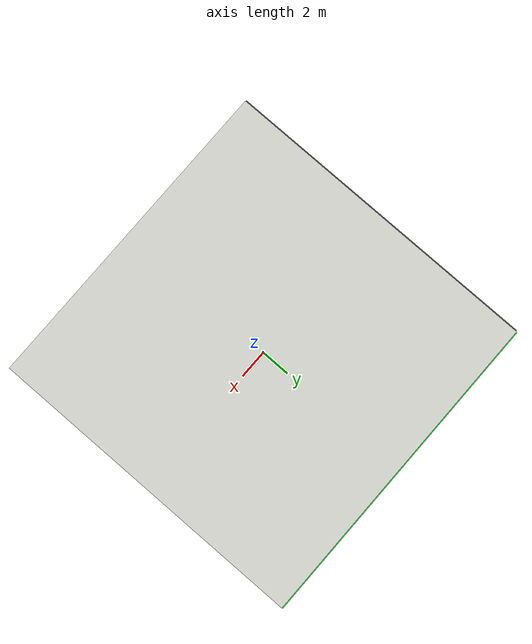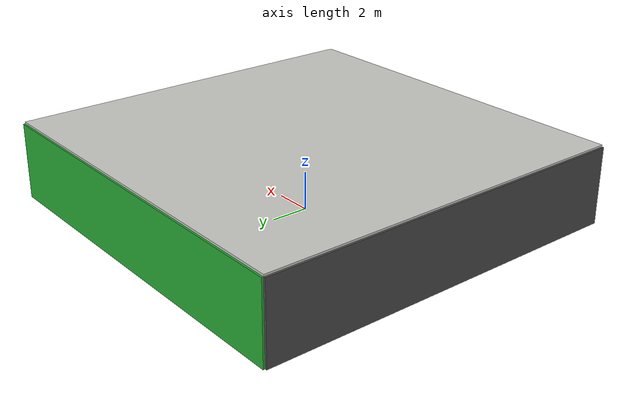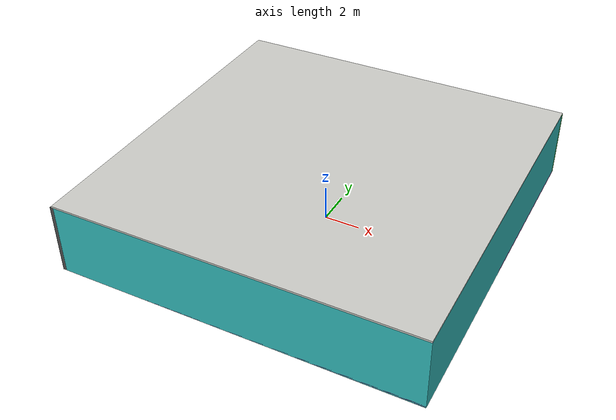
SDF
<sdf version="1.4">
 <world name="default">
  <physics type="ode">
   <max_step_size>0.001</max_step_size>
   <real_time_factor>1</real_time_factor>
   <real_time_update_rate>1000</real_time_update_rate>
   <gravity>0 0 -9.8</gravity>
  </physics>
  <scene><ambient>0.4 0.4 0.4 1</ambient><background>0.7 0.7 0.7 1</background><shadows>1</shadows></scene>
  <model name="Surrounding">
   <static>1</static>
   <link name="Ceiling">
    <collision name="Ceiling_Collision"><geometry><box><size>20 20 0.1</size></box></geometry></collision>
    <visual name="Ceiling_Visual">
     <geometry><box><size>20 20 0.1</size></box></geometry>
     <material>
      <script><uri>file://media/materials/scripts/gazebo.material</uri><name>Gazebo/CeilingTiled</name></script>
     </material>
    </visual>
    <pose>0 0 4.05 0 0 0</pose>
   </link>
   <link name="Wall_South">
    <collision name="Wall_South_Collision">
     <geometry><box><size>20 0 4</size></box></geometry>
     <pose>0 0 2 0 -0 0</pose>
    </collision>
    <visual name="Wall_South_Visual">
     <pose>0 0 2 0 -0 0</pose>
     <geometry><box><size>20 0 4</size></box></geometry>
     <material>
      <script>
       <uri>file://media/materials/scripts/gazebo.material</uri>
       <name>Gazebo/TurquoiseGlowOutline</name>
      </script>
     </material>
    </visual>
    <velocity_decay><linear>0</linear><angular>0</angular></velocity_decay>
    <pose>0 -10 0 0 -0 0</pose>
   </link>
   <link name="Wall_East">
    <collision name="Wall_21_Collision">
     <geometry><box><size>20 0 4</size></box></geometry>
     <pose>0 0 2 0 -0 0</pose>
    </collision>
    <visual name="Wall_21_Visual">
     <pose>0 0 2 0 -0 0</pose>
     <geometry><box><size>20 0 4</size></box></geometry>
     <material>
      <script>
       <uri>file://media/materials/scripts/gazebo.material</uri>
       <name>Gazebo/TurquoiseGlowOutline</name>
      </script>
     </material>
    </visual>
    <velocity_decay><linear>0</linear><angular>0</angular></velocity_decay>
    <pose>10 0 0 0 -0 1.5708</pose>
   </link>
   <link name="Wall_North">
    <collision name="Wall_22_Collision">
     <geometry><box><size>20 0.2 4</size></box></geometry>
     <pose>0 0 2 0 -0 0</pose>
    </collision>
    <visual name="Wall_22_Visual">
     <pose>0 0 2 0 -0 0</pose>
     <geometry><box><size>20 0.2 4</size></box></geometry>
     <material>
      <script><uri>file://media/materials/scripts/gazebo.material</uri><name>Gazebo/GreenGlow</name></script>
     </material>
    </visual>
    <velocity_decay><linear>0</linear><angular>0</angular></velocity_decay>
    <pose>0 10 0 0 -0 0</pose>
   </link>
   <link name="Wall_West">
    <collision name="Wall_23_Collision">
     <geometry><box><size>20 0.2 4</size></box></geometry>
     <pose>0 0 2 0 -0 0</pose>
    </collision>
    <visual name="Wall_23_Visual">
     <pose>0 0 2 0 -0 0</pose>
     <geometry><box><size>20 0.2 4</size></box></geometry>
     <material>
      <script><uri>file://media/materials/scripts/gazebo.material</uri><name>Gazebo/Road</name></script>
     </material>
    </visual>
    <velocity_decay><linear>0</linear><angular>0</angular></velocity_decay>
    <pose>-10 0 0 0 0 -1.5708</pose>
   </link>
   <link name="Ground_link">
    <collision name="collision">
     <pose>0 0 .05 0 -0 0</pose>
     <geometry><box><size>20 20 0.1</size></box></geometry>
    </collision>
    <visual name="visual">
     <pose>0 0 .05 0 -0 0</pose>
     <geometry><box><size>20 20 0.1</size></box></geometry>
     <material>
      <script><uri>file://media/materials/scripts/gazebo.material</uri><name>Gazebo/Purple</name></script>
     </material>
    </visual>
   </link>
   <static>1</static>
  </model>
  <spherical_coordinates>
   <surface_model>EARTH_WGS84</surface_model>
   <latitude_deg>0</latitude_deg>
   <longitude_deg>0</longitude_deg>
   <elevation>0</elevation>
   <heading_deg>0</heading_deg>
  </spherical_coordinates>
  <light name="lightball_0" type="diffuse">
   <diffuse>0.8 0.8 0.8 1</diffuse>
   <specular>0.2 0.2 0.2 1</specular>
   <attenuation>
    <range>100</range>
    <constant>0.7</constant>
    <linear>0.01</linear>
    <quadratic>0.001</quadratic>
   </attenuation>
   <direction>-0.5 0.1 -0.9</direction>
   <pose>1.05951414884 -6.47816248523 2.20598299701 0 0 0</pose>
  </light>
  <light name="lightball_1" type="diffuse">
   <diffuse>0.8 0.8 0.8 1</diffuse>
   <specular>0.2 0.2 0.2 1</specular>
   <attenuation>
    <range>100</range>
    <constant>0.7</constant>
    <linear>0.01</linear>
    <quadratic>0.001</quadratic>
   </attenuation>
   <direction>-0.5 0.1 -0.9</direction>
   <pose>-7.74139677814 3.06487845457 1.65737108191 0 0 0</pose>
  </light>
  <light name="lightball_2" type="diffuse">
   <diffuse>0.8 0.8 0.8 1</diffuse>
   <specular>0.2 0.2 0.2 1</specular>
   <attenuation>
    <range>100</range>
    <constant>0.7</constant>
    <linear>0.01</linear>
    <quadratic>0.001</quadratic>
   </attenuation>
   <direction>-0.5 0.1 -0.9</direction>
   <pose>-0.678943220736 3.22509638073 0.537734174758 0 0 0</pose>
  </light>
  <light name="lightball_3" type="diffuse">
   <diffuse>0.8 0.8 0.8 1</diffuse>
   <specular>0.2 0.2 0.2 1</specular>
   <attenuation>
    <range>100</range>
    <constant>0.7</constant>
    <linear>0.01</linear>
    <quadratic>0.001</quadratic>
   </attenuation>
   <direction>-0.5 0.1 -0.9</direction>
   <pose>-3.92062477412 6.51060461589 3.87561249906 0 0 0</pose>
  </light>
  <light name="lightball_4" type="diffuse">
   <diffuse>0.8 0.8 0.8 1</diffuse>
   <specular>0.2 0.2 0.2 1</specular>
   <attenuation>
    <range>100</range>
    <constant>0.7</constant>
    <linear>0.01</linear>
    <quadratic>0.001</quadratic>
   </attenuation>
   <direction>-0.5 0.1 -0.9</direction>
   <pose>-8.03625964553 7.1165075549 0.707542338708 0 0 0</pose>
  </light>
  <light name="lightball_5" type="diffuse">
   <diffuse>0.8 0.8 0.8 1</diffuse>
   <specular>0.2 0.2 0.2 1</specular>
   <attenuation>
    <range>100</range>
    <constant>0.7</constant>
    <linear>0.01</linear>
    <quadratic>0.001</quadratic>
   </attenuation>
   <direction>-0.5 0.1 -0.9</direction>
   <pose>-1.47745090738 -6.36643966024 2.15629560776 0 0 0</pose>
  </light>
  <light name="lightball_6" type="diffuse">
   <diffuse>0.8 0.8 0.8 1</diffuse>
   <specular>0.2 0.2 0.2 1</specular>
   <attenuation>
    <range>100</range>
    <constant>0.7</constant>
    <linear>0.01</linear>
    <quadratic>0.001</quadratic>
   </attenuation>
   <direction>-0.5 0.1 -0.9</direction>
   <pose>4.48360492421 -4.38417891015 0.660200367256 0 0 0</pose>
  </light>
  <light name="lightball_7" type="diffuse">
   <diffuse>0.8 0.8 0.8 1</diffuse>
   <specular>0.2 0.2 0.2 1</specular>
   <attenuation>
    <range>100</range>
    <constant>0.7</constant>
    <linear>0.01</linear>
    <quadratic>0.001</quadratic>
   </attenuation>
   <direction>-0.5 0.1 -0.9</direction>
   <pose>1.34036711826 -9.97909737294 0.800662163737 0 0 0</pose>
  </light>
  <light name="lightball_8" type="diffuse">
   <diffuse>0.8 0.8 0.8 1</diffuse>
   <specular>0.2 0.2 0.2 1</specular>
   <attenuation>
    <range>100</range>
    <constant>0.7</constant>
    <linear>0.01</linear>
    <quadratic>0.001</quadratic>
   </attenuation>
   <direction>-0.5 0.1 -0.9</direction>
   <pose>-1.59047432287 -1.29218022585 1.8336235856 0 0 0</pose>
  </light>
  <light name="lightball_9" type="diffuse">
   <diffuse>0.8 0.8 0.8 1</diffuse>
   <specular>0.2 0.2 0.2 1</specular>
   <attenuation>
    <range>100</range>
    <constant>0.7</constant>
    <linear>0.01</linear>
    <quadratic>0.001</quadratic>
   </attenuation>
   <direction>-0.5 0.1 -0.9</direction>
   <pose>6.56429968202 -3.82652842 1.27508092642 0 0 0</pose>
  </light>
  <light name="lightball_10" type="diffuse">
   <diffuse>0.8 0.8 0.8 1</diffuse>
   <specular>0.2 0.2 0.2 1</specular>
   <attenuation>
    <range>100</range>
    <constant>0.7</constant>
    <linear>0.01</linear>
    <quadratic>0.001</quadratic>
   </attenuation>
   <direction>-0.5 0.1 -0.9</direction>
   <pose>-3.48565232824 6.17825871574 1.7668369437 0 0 0</pose>
  </light>
  <light name="lightball_11" type="diffuse">
   <diffuse>0.8 0.8 0.8 1</diffuse>
   <specular>0.2 0.2 0.2 1</specular>
   <attenuation>
    <range>100</range>
    <constant>0.7</constant>
    <linear>0.01</linear>
    <quadratic>0.001</quadratic>
   </attenuation>
   <direction>-0.5 0.1 -0.9</direction>
   <pose>9.82805507102 -9.38641069384 2.10985112961 0 0 0</pose>
  </light>
  <light name="lightball_12" type="diffuse">
   <diffuse>0.8 0.8 0.8 1</diffuse>
   <specular>0.2 0.2 0.2 1</specular>
   <attenuation>
    <range>100</range>
    <constant>0.7</constant>
    <linear>0.01</linear>
    <quadratic>0.001</quadratic>
   </attenuation>
   <direction>-0.5 0.1 -0.9</direction>
   <pose>-4.98005875893 -1.40915526364 2.65217940349 0 0 0</pose>
  </light>
  <include><uri>model://table</uri><pose>-6.33733791391 0.30175857802 0 0 0 1.00570768852</pose></include>
  <include><uri>model://cabinet</uri><pose>-4.59458246527 -7.86190421405 0 0 0 1.42632126131</pose></include>
  <include><uri>model://cabinet</uri><pose>-4.90858135465 3.83263286588 0 0 0 1.87721058685</pose></include>
  <include><uri>model://cabinet</uri><pose>-1.90343071196 -3.48129801543 0 0 0 2.58194199693</pose></include>
  <include><uri>model://cabinet</uri><pose>-2.32676635201 0.608236641647 0 0 0 0.0344237668943</pose></include>
  <include><uri>model://table</uri><pose>-1.8475315162 8.17666213591 0 0 0 1.92660978164</pose></include>
  <include><uri>model://cabinet</uri><pose>2.52300389325 -5.41456335952 0 0 0 1.18516769698</pose></include>
  <include><uri>model://cabinet</uri><pose>3.89679273179 7.89803539904 0 0 0 1.43883388708</pose></include>
 </world>
</sdf>

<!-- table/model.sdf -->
<sdf version="1.5">
  <model name="table">
    <static>true</static>
    <link name="link">
      <collision name="surface">
        <pose>0 0 1.0 0 0 0</pose>
        <geometry>
          <box>
            <size>1.5 0.8 0.03</size>
          </box>
        </geometry>
        <surface>
          <friction>
            <ode>
              <mu>0.6</mu>
              <mu2>0.6</mu2>
            </ode>
          </friction>
        </surface>
      </collision>
      <visual name="visual1">
        <pose>0 0 1.0 0 0 0</pose>
        <geometry>
          <box>
            <size>1.5 0.8 0.03</size>
          </box>
        </geometry>
        <material>
          <script>
            <uri>model://media/materials/scripts/gazebo.material</uri>
            <name>Gazebo/Wood</name>
          </script>
        </material>
      </visual>
      <collision name="front_left_leg">
        <pose>0.68 0.38 0.5 0 0 0</pose>
        <geometry>
          <cylinder>
            <radius>0.02</radius>
            <length>1.0</length>
          </cylinder>
        </geometry>
      </collision>
      <visual name="front_left_leg">
        <pose>0.68 0.38 0.5 0 0 0</pose>
        <geometry>
          <cylinder>
            <radius>0.02</radius>
            <length>1.0</length>
          </cylinder>
        </geometry>
        <material>
          <script>
            <uri>model://media/materials/scripts/gazebo.material</uri>
            <name>Gazebo/Grey</name>
          </script>
        </material>
      </visual>
      <collision name="front_right_leg">
        <pose>0.68 -0.38 0.5 0 0 0</pose>
        <geometry>
          <cylinder>
            <radius>0.02</radius>
            <length>1.0</length>
          </cylinder>
        </geometry>
      </collision>
      <visual name="front_right_leg">
        <pose>0.68 -0.38 0.5 0 0 0</pose>
        <geometry>
          <cylinder>
            <radius>0.02</radius>
            <length>1.0</length>
          </cylinder>
        </geometry>
        <material>
          <script>
            <uri>model://media/materials/scripts/gazebo.material</uri>
            <name>Gazebo/Grey</name>
          </script>
        </material>
      </visual>
      <collision name="back_right_leg">
        <pose>-0.68 -0.38 0.5 0 0 0</pose>
        <geometry>
          <cylinder>
            <radius>0.02</radius>
            <length>1.0</length>
          </cylinder>
        </geometry>
      </collision>
      <visual name="back_right_leg">
        <pose>-0.68 -0.38 0.5 0 0 0</pose>
        <geometry>
          <cylinder>
            <radius>0.02</radius>
            <length>1.0</length>
          </cylinder>
        </geometry>
        <material>
          <script>
            <uri>model://media/materials/scripts/gazebo.material</uri>
            <name>Gazebo/Grey</name>
          </script>
        </material>
      </visual>
      <collision name="back_left_leg">
        <pose>-0.68 0.38 0.5 0 0 0</pose>
        <geometry>
          <cylinder>
            <radius>0.02</radius>
            <length>1.0</length>
          </cylinder>
        </geometry>
      </collision>
      <visual name="back_left_leg">
        <pose>-0.68 0.38 0.5 0 0 0</pose>
        <geometry>
          <cylinder>
            <radius>0.02</radius>
            <length>1.0</length>
          </cylinder>
        </geometry>
        <material>
          <script>
            <uri>model://media/materials/scripts/gazebo.material</uri>
            <name>Gazebo/Grey</name>
          </script>
        </material>
      </visual>
    </link>
  </model>
</sdf>

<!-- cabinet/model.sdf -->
<sdf version="1.5">
  <model name="cabinet">
    <static>true</static>
    <link name="cabinet_bottom_plate">
      <inertial>
        <pose>0 0 -1 0 0 0</pose>
        <inertia>
          <ixx>2.050000</ixx>
          <ixy>0</ixy>
          <ixz>0</ixz>
          <iyy>2.050000</iyy>
          <iyz>0</iyz>
          <izz>2.050000</izz>
        </inertia>
        <mass>25.000000</mass>
      </inertial>
      <collision name="cabinet_bottom_plate_geom">
        <pose>0 0 0.010000 0 0 0</pose>
        <geometry>
          <box>
            <size>0.450000 0.450000 0.020000</size>
          </box>
        </geometry>
      </collision>
      <visual name="cabinet_bottom_plate_geom_visual">
        <pose>0 0 0.010000 0 0 0</pose>
        <geometry>
          <box>
            <size>0.450000 0.450000 0.020000</size>
          </box>
        </geometry>
        <material>
          <script>
            <uri>model://media/materials/scripts/gazebo.material</uri>
            <name>Gazebo/Wood</name>
          </script>
        </material>
      </visual>
      <collision name="cabinet_bottom_plate_geom_cabinet_back_plate">
        <pose>0.235000 0 0.510000 0 0 0</pose>
        <geometry>
          <box>
            <size>0.020000 0.450000 1.020000</size>
          </box>
        </geometry>
      </collision>
      <visual name="cabinet_bottom_plate_geom_cabinet_back_plate_visual">
        <pose>0.235000 0 0.510000 0 0 0</pose>
        <geometry>
          <box>
            <size>0.020000 0.450000 1.020000</size>
          </box>
        </geometry>
        <material>
          <script>
            <uri>model://media/materials/scripts/gazebo.material</uri>
            <name>Gazebo/Wood</name>
          </script>
        </material>
      </visual>
      <collision name="cabinet_bottom_plate_geom_cabinet_left_plate">
        <pose>0 0.235000 0.510000 0 0 0</pose>
        <geometry>
          <box>
            <size>0.450000 0.020000 1.020000</size>
          </box>
        </geometry>
      </collision>
      <visual name="cabinet_bottom_plate_geom_cabinet_left_plate_visual">
        <pose>0 0.235000 0.510000 0 0 0</pose>
        <geometry>
          <box>
            <size>0.450000 0.020000 1.020000</size>
          </box>
        </geometry>
        <material>
          <script>
            <uri>model://media/materials/scripts/gazebo.material</uri>
            <name>Gazebo/Wood</name>
          </script>
        </material>
      </visual>
      <collision name="cabinet_bottom_plate_geom_cabinet_middle_plate">
        <pose>0 0 0.510000 0 0 0</pose>
        <geometry>
          <box>
            <size>0.450000 0.450000 0.020000</size>
          </box>
        </geometry>
      </collision>
      <visual name="cabinet_bottom_plate_geom_cabinet_middle_plate_visual">
        <pose>0 0 0.510000 0 0 0</pose>
        <geometry>
          <box>
            <size>0.450000 0.450000 0.020000</size>
          </box>
        </geometry>
        <material>
          <script>
            <uri>model://media/materials/scripts/gazebo.material</uri>
            <name>Gazebo/Wood</name>
          </script>
        </material>
      </visual>
      <collision name="cabinet_bottom_plate_geom_cabinet_right_plate">
        <pose>0 -0.235000 0.510000 0 0 0</pose>
        <geometry>
          <box>
            <size>0.450000 0.020000 1.020000</size>
          </box>
        </geometry>
      </collision>
      <visual name="cabinet_bottom_plate_geom_cabinet_right_plate_visual">
        <pose>0 -0.235000 0.510000 0 0 0</pose>
        <geometry>
          <box>
            <size>0.450000 0.020000 1.020000</size>
          </box>
        </geometry>
        <material>
          <script>
            <uri>model://media/materials/scripts/gazebo.material</uri>
            <name>Gazebo/Wood</name>
          </script>
        </material>
      </visual>
      <collision name="cabinet_bottom_plate_geom_cabinet_top_plate">
        <pose>0 0 1.010000 0 0 0</pose>
        <geometry>
          <box>
            <size>0.450000 0.450000 0.020000</size>
          </box>
        </geometry>
      </collision>
      <visual name="cabinet_bottom_plate_geom_cabinet_top_plate_visual">
        <pose>0 0 1.010000 0 0 0</pose>
        <geometry>
          <box>
            <size>0.450000 0.450000 0.020000</size>
          </box>
        </geometry>
        <material>
          <script>
            <uri>model://media/materials/scripts/gazebo.material</uri>
            <name>Gazebo/Wood</name>
          </script>
        </material>
      </visual>
    </link>
  </model>
</sdf>
